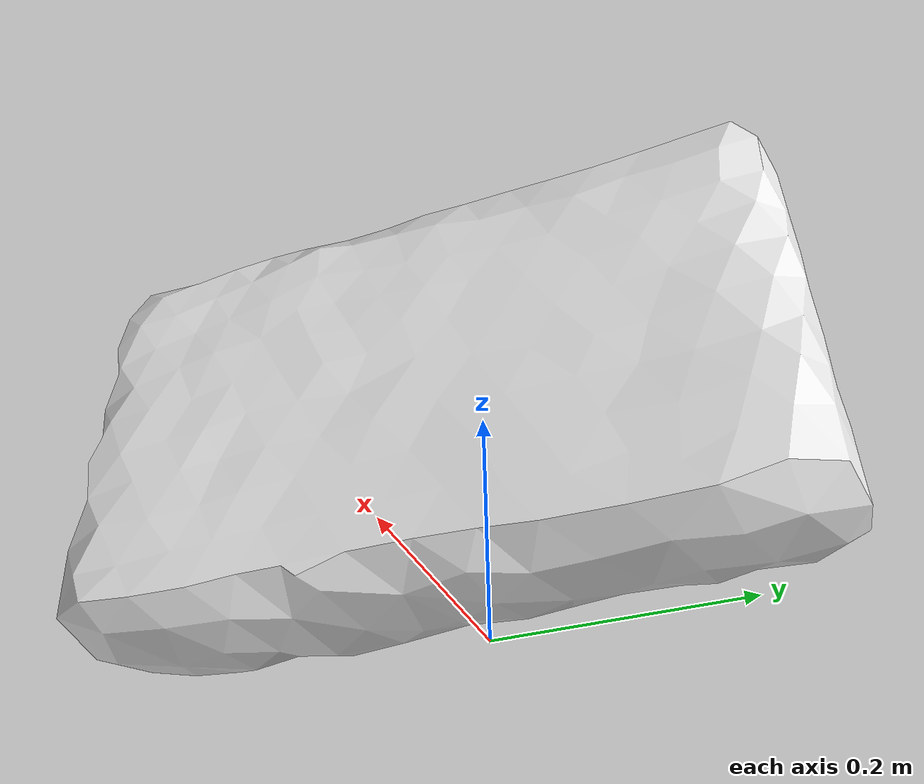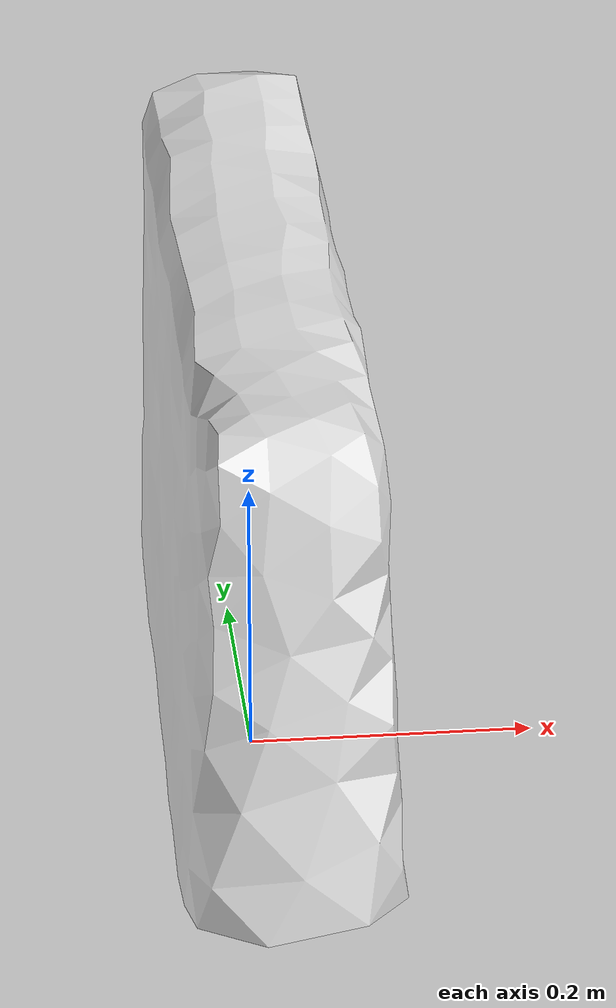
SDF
<?xml version="1.0" ?><sdf version="1.5"><model name="benq-box">
<link name="link">
<pose>0 0 0 0 0 0</pose>
<inertial>
<pose>0.0045555 -0.04627 0.221547 0 0 0</pose>
<mass>0.85</mass>
<inertia>
<ixx>0.0418824</ixx>
<ixy>0</ixy><iyy>0.0123998</iyy>
<ixz>0</ixz><iyz>0</iyz><izz>0.0327562</izz>
</inertia>
</inertial>
<visual name="visual">
<pose>0 0 0 0 0 0</pose>
<geometry><mesh><uri>model://benq-box/meshes/benq-box.dae</uri></mesh></geometry>
<material><script><uri>file://media/materials/scripts/gazebo.material</uri><name>Gazebo/WhiteGlow</name></script></material></visual>
<collision name="collision"><pose>0 0 0 0 0 0</pose><geometry><mesh><uri>model://benq-box/meshes/benq-box.dae</uri></mesh></geometry>
<surface><friction><ode><mu>1.000000</mu><mu2>1.000000</mu2></ode></friction></surface>
</collision></link></model></sdf>
